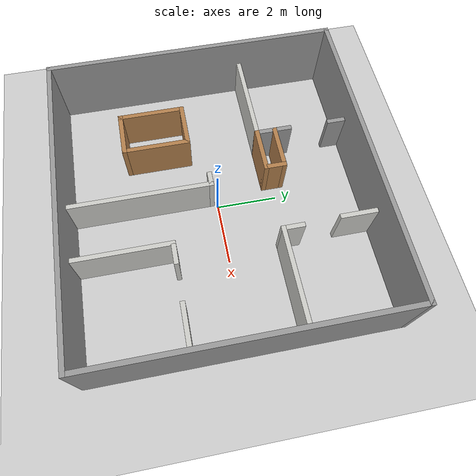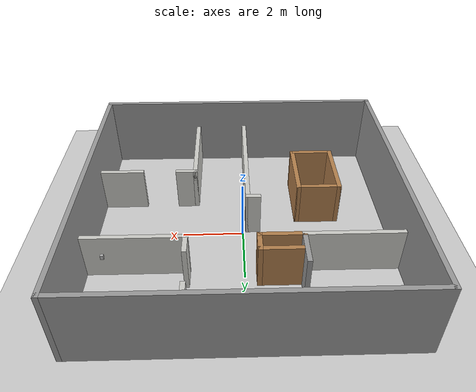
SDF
<sdf version="1.6">
 <world name="default">
  <scene><ambient>0.4 0.4 0.4 1</ambient><background>0.7 0.7 0.7 1</background><shadows>0</shadows></scene>
  <light name="sun" type="directional">
   <cast_shadows>0</cast_shadows>
   <pose>0 0 10 0 -0 0</pose>
   <diffuse>0.8 0.8 0.8 1</diffuse>
   <specular>0.2 0.2 0.2 1</specular>
   <attenuation>
    <range>1000</range>
    <constant>0.9</constant>
    <linear>0.01</linear>
    <quadratic>0.001</quadratic>
   </attenuation>
   <direction>-0.5 0.1 -0.9</direction>
  </light>
  <model name="ground_plane">
   <static>1</static>
   <link name="link">
    <collision name="collision">
     <geometry><plane><normal>0 0 1</normal><size>100 100</size></plane></geometry>
     <surface><friction><ode><mu>100</mu><mu2>50</mu2></ode></friction></surface>
    </collision>
    <visual name="visual">
     <cast_shadows>0</cast_shadows>
     <geometry><plane><normal>0 0 1</normal><size>100 100</size></plane></geometry>
     <material>
      <script><uri>file://media/materials/scripts/gazebo.material</uri><name>Gazebo/Grey</name></script>
     </material>
    </visual>
   </link>
  </model>
  <physics name="default_physics" default="0" type="ode">
   <real_time_update_rate>1000</real_time_update_rate>
   <max_step_size>0.001</max_step_size>
   <real_time_factor>1</real_time_factor>
   <ode>
    <solver>
     <type>quick</type>
     <iters>150</iters>
     <precon_iters>0</precon_iters>
     <sor>1.4</sor>
     <use_dynamic_moi_rescaling>1</use_dynamic_moi_rescaling>
    </solver>
    <constraints>
     <cfm>1e-05</cfm>
     <erp>0.2</erp>
     <contact_max_correcting_vel>2000</contact_max_correcting_vel>
     <contact_surface_layer>0.01</contact_surface_layer>
    </constraints>
   </ode>
  </physics>
  <gravity>0 0 -9.8</gravity>
  <magnetic_field>6e-06 2.3e-05 -4.2e-05</magnetic_field>
  <atmosphere type="adiabatic"/>
  <audio><device>default</device></audio>
  <spherical_coordinates>
   <surface_model>EARTH_WGS84</surface_model>
   <latitude_deg>0</latitude_deg>
   <longitude_deg>0</longitude_deg>
   <elevation>0</elevation>
   <heading_deg>0</heading_deg>
  </spherical_coordinates>
  <model name="tea_box">
   <link name="link">
    <pose>0 0 0.075 0 -0 0</pose>
    <visual name="visual">
     <geometry><box><size>0.1 0.1 0.15</size></box></geometry>
     <material>
      <script>
       <uri>model://tea_box/materials/scripts</uri>
       <uri>model://tea_box/materials/textures</uri>
       <name>tea_pat</name>
      </script>
     </material>
    </visual>
    <collision name="collision"><geometry><box><size>0.1 0.1 0.15</size></box></geometry></collision>
   </link>
   <static>1</static>
   <pose>4.27785 1.80097 0.73166 0 0 -1.57361</pose>
  </model>
  <model name="sdaw">
   <pose>-2.55291 -1.71833 0 0 -0 0</pose>
   <link name="Wall_14">
    <collision name="Wall_14_Collision">
     <geometry><box><size>1.5 0.15 1.5</size></box></geometry>
     <pose>0 0 0.75 0 -0 0</pose>
    </collision>
    <visual name="Wall_14_Visual">
     <pose>0 0 0.75 0 -0 0</pose>
     <geometry><box><size>1.5 0.15 1.5</size></box></geometry>
     <material>
      <script><uri>file://media/materials/scripts/gazebo.material</uri><name>Gazebo/Wood</name></script>
      <ambient>0.760784 0.662745 0.627451 1</ambient>
     </material>
     <meta><layer>0</layer></meta>
    </visual>
    <pose>-0 1.05 0 0 -0 0</pose>
   </link>
   <link name="Wall_15">
    <collision name="Wall_15_Collision">
     <geometry><box><size>2.25 0.15 1.5</size></box></geometry>
     <pose>0 0 0.75 0 -0 0</pose>
    </collision>
    <visual name="Wall_15_Visual">
     <pose>0 0 0.75 0 -0 0</pose>
     <geometry><box><size>2.25 0.15 1.5</size></box></geometry>
     <material>
      <script><uri>file://media/materials/scripts/gazebo.material</uri><name>Gazebo/Wood</name></script>
      <ambient>0.760784 0.662745 0.627451 1</ambient>
     </material>
     <meta><layer>0</layer></meta>
    </visual>
    <pose>0.675 0 0 0 -0 -1.5708</pose>
   </link>
   <link name="Wall_16">
    <collision name="Wall_16_Collision">
     <geometry><box><size>1.5 0.15 1.5</size></box></geometry>
     <pose>0 0 0.75 0 -0 0</pose>
    </collision>
    <visual name="Wall_16_Visual">
     <pose>0 0 0.75 0 -0 0</pose>
     <geometry><box><size>1.5 0.15 1.5</size></box></geometry>
     <material>
      <script><uri>file://media/materials/scripts/gazebo.material</uri><name>Gazebo/Wood</name></script>
      <ambient>0.760784 0.662745 0.627451 1</ambient>
     </material>
     <meta><layer>0</layer></meta>
    </visual>
    <pose>-0 -1.05 0 0 -0 3.14159</pose>
   </link>
   <link name="Wall_17">
    <collision name="Wall_17_Collision">
     <geometry><box><size>2.25 0.15 1.5</size></box></geometry>
     <pose>0 0 0.75 0 -0 0</pose>
    </collision>
    <visual name="Wall_17_Visual">
     <pose>0 0 0.75 0 -0 0</pose>
     <geometry><box><size>2.25 0.15 1.5</size></box></geometry>
     <material>
      <script><uri>file://media/materials/scripts/gazebo.material</uri><name>Gazebo/Wood</name></script>
      <ambient>0.760784 0.662745 0.627451 1</ambient>
     </material>
     <meta><layer>0</layer></meta>
    </visual>
    <pose>-0.675 0 0 0 -0 1.5708</pose>
   </link>
   <static>1</static>
  </model>
  <model name="envi">
   <pose>0.015594 -0.026 0 0 -0 0</pose>
   <link name="Wall_10">
    <collision name="Wall_10_Collision">
     <geometry><box><size>4.75 0.15 1.5</size></box></geometry>
     <pose>0 0 0.75 0 -0 0</pose>
    </collision>
    <visual name="Wall_10_Visual">
     <pose>0 0 0.75 0 -0 0</pose>
     <geometry><box><size>4.75 0.15 1.5</size></box></geometry>
     <material>
      <script><uri>file://media/materials/scripts/gazebo.material</uri><name>Gazebo/CeilingTiled</name></script>
      <ambient>1 1 1 1</ambient>
     </material>
     <meta><layer>0</layer></meta>
    </visual>
    <pose>-0.176594 -2.456 0 0 -0 1.5708</pose>
   </link>
   <link name="Wall_13">
    <collision name="Wall_13_Collision">
     <geometry><box><size>0.5 0.15 1.5</size></box></geometry>
     <pose>0 0 0.75 0 -0 0</pose>
    </collision>
    <visual name="Wall_13_Visual">
     <pose>0 0 0.75 0 -0 0</pose>
     <geometry><box><size>0.5 0.15 1.5</size></box></geometry>
     <material>
      <script><uri>file://media/materials/scripts/gazebo.material</uri><name>Gazebo/CeilingTiled</name></script>
      <ambient>1 1 1 1</ambient>
     </material>
     <meta><layer>0</layer></meta>
    </visual>
    <pose>-0.351594 -0.156 0 0 -0 3.14159</pose>
   </link>
   <link name="Wall_18">
    <collision name="Wall_18_Collision">
     <geometry><box><size>3.25 0.15 1.5</size></box></geometry>
     <pose>0 0 0.75 0 -0 0</pose>
    </collision>
    <visual name="Wall_18_Visual">
     <pose>0 0 0.75 0 -0 0</pose>
     <geometry><box><size>3.25 0.15 1.5</size></box></geometry>
     <material>
      <script><uri>file://media/materials/scripts/gazebo.material</uri><name>Gazebo/CeilingTiled</name></script>
      <ambient>1 1 1 1</ambient>
     </material>
     <meta><layer>0</layer></meta>
    </visual>
    <pose>1.59641 -3.189 0 0 -0 1.5708</pose>
   </link>
   <link name="Wall_19">
    <collision name="Wall_19_Collision">
     <geometry><box><size>0.75 0.15 1.5</size></box></geometry>
     <pose>0 0 0.75 0 -0 0</pose>
    </collision>
    <visual name="Wall_19_Visual">
     <pose>0 0 0.75 0 -0 0</pose>
     <geometry><box><size>0.75 0.15 1.5</size></box></geometry>
     <material>
      <script><uri>file://media/materials/scripts/gazebo.material</uri><name>Gazebo/CeilingTiled</name></script>
      <ambient>1 1 1 1</ambient>
     </material>
     <meta><layer>0</layer></meta>
    </visual>
    <pose>1.89641 -1.639 0 0 -0 0</pose>
   </link>
   <link name="Wall_2">
    <collision name="Wall_2_Collision">
     <geometry><box><size>9.75 0.15 2.5</size></box></geometry>
     <pose>0 0 1.25 0 -0 0</pose>
    </collision>
    <visual name="Wall_2_Visual">
     <pose>0 0 1.25 0 -0 0</pose>
     <geometry><box><size>9.75 0.15 2.5</size></box></geometry>
     <material>
      <script><uri>file://media/materials/scripts/gazebo.material</uri><name>Gazebo/Grey</name></script>
      <ambient>1 1 1 1</ambient>
     </material>
     <meta><layer>0</layer></meta>
    </visual>
    <pose>-4.925 -0 0 0 -0 1.5708</pose>
   </link>
   <link name="Wall_21">
    <collision name="Wall_21_Collision">
     <geometry><box><size>1.5 0.15 1.5</size></box></geometry>
     <pose>0 0 0.75 0 -0 0</pose>
    </collision>
    <visual name="Wall_21_Visual">
     <pose>0 0 0.75 0 -0 0</pose>
     <geometry><box><size>1.5 0.15 1.5</size></box></geometry>
     <material>
      <script><uri>file://media/materials/scripts/gazebo.material</uri><name>Gazebo/CeilingTiled</name></script>
      <ambient>1 1 1 1</ambient>
     </material>
     <meta><layer>0</layer></meta>
    </visual>
    <pose>4.13041 -1.642 0 0 -0 0</pose>
   </link>
   <link name="Wall_23">
    <collision name="Wall_23_Collision">
     <geometry><box><size>3.25 0.15 1.5</size></box></geometry>
     <pose>0 0 0.75 0 -0 0</pose>
    </collision>
    <visual name="Wall_23_Visual">
     <pose>0 0 0.75 0 -0 0</pose>
     <geometry><box><size>3.25 0.15 1.5</size></box></geometry>
     <material>
      <script><uri>file://media/materials/scripts/gazebo.material</uri><name>Gazebo/CeilingTiled</name></script>
      <ambient>1 1 1 1</ambient>
     </material>
     <meta><layer>0</layer></meta>
    </visual>
    <pose>3.28541 1.717 0 0 -0 3.14159</pose>
   </link>
   <link name="Wall_24">
    <collision name="Wall_24_Collision">
     <geometry><box><size>0.75 0.15 1.5</size></box></geometry>
     <pose>0 0 0.75 0 -0 0</pose>
    </collision>
    <visual name="Wall_24_Visual">
     <pose>0 0 0.75 0 -0 0</pose>
     <geometry><box><size>0.75 0.15 1.5</size></box></geometry>
     <material>
      <script><uri>file://media/materials/scripts/gazebo.material</uri><name>Gazebo/CeilingTiled</name></script>
      <ambient>1 1 1 1</ambient>
     </material>
     <meta><layer>0</layer></meta>
    </visual>
    <pose>1.73541 2.017 0 0 -0 1.5708</pose>
   </link>
   <link name="Wall_26">
    <collision name="Wall_26_Collision">
     <geometry><box><size>1.25 0.15 1.5</size></box></geometry>
     <pose>0 0 0.75 0 -0 0</pose>
    </collision>
    <visual name="Wall_26_Visual">
     <pose>0 0 0.75 0 -0 0</pose>
     <geometry><box><size>1.25 0.15 1.5</size></box></geometry>
     <material>
      <script><uri>file://media/materials/scripts/gazebo.material</uri><name>Gazebo/CeilingTiled</name></script>
      <ambient>1 1 1 1</ambient>
     </material>
     <meta><layer>0</layer></meta>
    </visual>
    <pose>1.68341 4.14 0 0 -0 1.5708</pose>
   </link>
   <link name="Wall_35">
    <collision name="Wall_35_Collision">
     <geometry><box><size>0.75 0.15 1.5</size></box></geometry>
     <pose>0 0 0.75 0 -0 0</pose>
    </collision>
    <visual name="Wall_35_Visual">
     <pose>0 0 0.75 0 -0 0</pose>
     <geometry><box><size>0.75 0.15 1.5</size></box></geometry>
     <material>
      <script><uri>file://media/materials/scripts/gazebo.material</uri><name>Gazebo/Grey</name></script>
      <ambient>1 1 1 1</ambient>
     </material>
     <meta><layer>0</layer></meta>
    </visual>
    <pose>-1.79559 4.488 0 0 -0 -1.5708</pose>
   </link>
   <link name="Wall_42">
    <collision name="Wall_42_Collision">
     <geometry><box><size>3.25 0.15 1.5</size></box></geometry>
     <pose>0 0 0.75 0 -0 0</pose>
    </collision>
    <visual name="Wall_42_Visual">
     <pose>0 0 0.75 0 -0 0</pose>
     <geometry><box><size>3.25 0.15 1.5</size></box></geometry>
     <material>
      <script><uri>file://media/materials/scripts/gazebo.material</uri><name>Gazebo/CeilingTiled</name></script>
      <ambient>1 1 1 1</ambient>
     </material>
     <meta><layer>0</layer></meta>
    </visual>
    <pose>-3.35459 1.695 0 0 -0 0</pose>
   </link>
   <link name="Wall_43">
    <collision name="Wall_43_Collision">
     <geometry><box><size>1.25 0.15 1.5</size></box></geometry>
     <pose>0 0 0.75 0 -0 0</pose>
    </collision>
    <visual name="Wall_43_Visual">
     <pose>0 0 0.75 0 -0 0</pose>
     <geometry><box><size>1.25 0.15 1.5</size></box></geometry>
     <material>
      <script><uri>file://media/materials/scripts/gazebo.material</uri><name>Gazebo/Grey</name></script>
      <ambient>1 1 1 1</ambient>
     </material>
     <meta><layer>0</layer></meta>
    </visual>
    <pose>-1.80459 2.245 0 0 -0 1.5708</pose>
   </link>
   <link name="Wall_45">
    <collision name="Wall_45_Collision">
     <geometry><box><size>1.5 0.15 1.5</size></box></geometry>
     <pose>0 0 0.75 0 -0 0</pose>
    </collision>
    <visual name="Wall_45_Visual">
     <pose>0 0 0.75 0 -0 0</pose>
     <geometry><box><size>1.5 0.15 1.5</size></box></geometry>
     <material>
      <script><uri>file://media/materials/scripts/gazebo.material</uri><name>Gazebo/Wood</name></script>
      <ambient>1 1 1 1</ambient>
     </material>
     <meta><layer>0</layer></meta>
    </visual>
    <pose>-1.12959 1.695 0 0 -0 0</pose>
   </link>
   <link name="Wall_46">
    <collision name="Wall_46_Collision">
     <geometry><box><size>0.75 0.15 1.5</size></box></geometry>
     <pose>0 0 0.75 0 -0 0</pose>
    </collision>
    <visual name="Wall_46_Visual">
     <pose>0 0 0.75 0 -0 0</pose>
     <geometry><box><size>0.75 0.15 1.5</size></box></geometry>
     <material>
      <script><uri>file://media/materials/scripts/gazebo.material</uri><name>Gazebo/Wood</name></script>
      <ambient>1 1 1 1</ambient>
     </material>
     <meta><layer>0</layer></meta>
    </visual>
    <pose>-0.454594 1.995 0 0 -0 1.5708</pose>
   </link>
   <link name="Wall_47">
    <collision name="Wall_47_Collision">
     <geometry><box><size>1.5 0.15 1.5</size></box></geometry>
     <pose>0 0 0.75 0 -0 0</pose>
    </collision>
    <visual name="Wall_47_Visual">
     <pose>0 0 0.75 0 -0 0</pose>
     <geometry><box><size>1.5 0.15 1.5</size></box></geometry>
     <material>
      <script><uri>file://media/materials/scripts/gazebo.material</uri><name>Gazebo/Wood</name></script>
      <ambient>1 1 1 1</ambient>
     </material>
     <meta><layer>0</layer></meta>
    </visual>
    <pose>-1.12959 2.295 0 0 -0 3.14159</pose>
   </link>
   <link name="Wall_6">
    <collision name="Wall_6_Collision">
     <geometry><box><size>10 0.15 2.5</size></box></geometry>
     <pose>0 0 1.25 0 -0 0</pose>
    </collision>
    <visual name="Wall_6_Visual">
     <pose>0 0 1.25 0 -0 0</pose>
     <geometry><box><size>10 0.15 2.5</size></box></geometry>
     <material>
      <script><uri>file://media/materials/scripts/gazebo.material</uri><name>Gazebo/Grey</name></script>
      <ambient>1 1 1 1</ambient>
     </material>
     <meta><layer>0</layer></meta>
    </visual>
    <pose>0 -4.8 0 0 -0 0</pose>
   </link>
   <link name="Wall_7">
    <collision name="Wall_7_Collision">
     <geometry><box><size>9.75 0.15 2.5</size></box></geometry>
     <pose>0 0 1.25 0 -0 0</pose>
    </collision>
    <visual name="Wall_7_Visual">
     <pose>0 0 1.25 0 -0 0</pose>
     <geometry><box><size>9.75 0.15 2.5</size></box></geometry>
     <material>
      <script><uri>file://media/materials/scripts/gazebo.material</uri><name>Gazebo/Grey</name></script>
      <ambient>1 1 1 1</ambient>
     </material>
     <meta><layer>0</layer></meta>
    </visual>
    <pose>4.925 -0 0 0 -0 1.5708</pose>
   </link>
   <link name="Wall_8">
    <collision name="Wall_8_Collision">
     <geometry><box><size>10 0.15 2.5</size></box></geometry>
     <pose>0 0 1.25 0 -0 0</pose>
    </collision>
    <visual name="Wall_8_Visual">
     <pose>0 0 1.25 0 -0 0</pose>
     <geometry><box><size>10 0.15 2.5</size></box></geometry>
     <material>
      <script><uri>file://media/materials/scripts/gazebo.material</uri><name>Gazebo/Grey</name></script>
      <ambient>1 1 1 1</ambient>
     </material>
     <meta><layer>0</layer></meta>
    </visual>
    <pose>0 4.8 0 0 -0 3.14159</pose>
   </link>
   <static>1</static>
  </model>
 </world>
</sdf>
